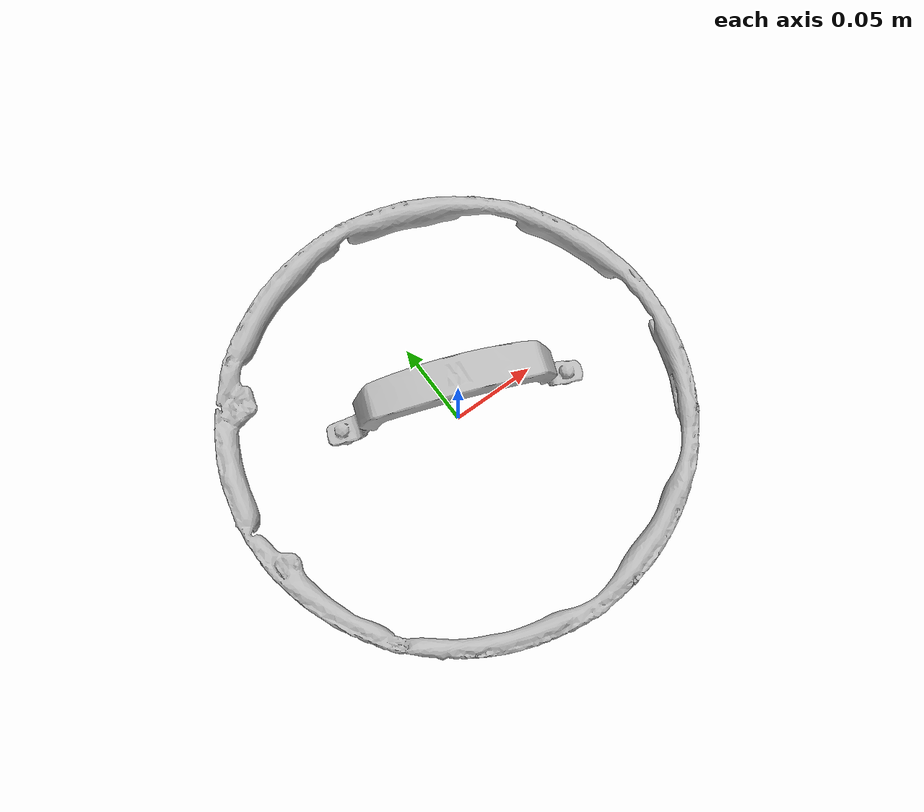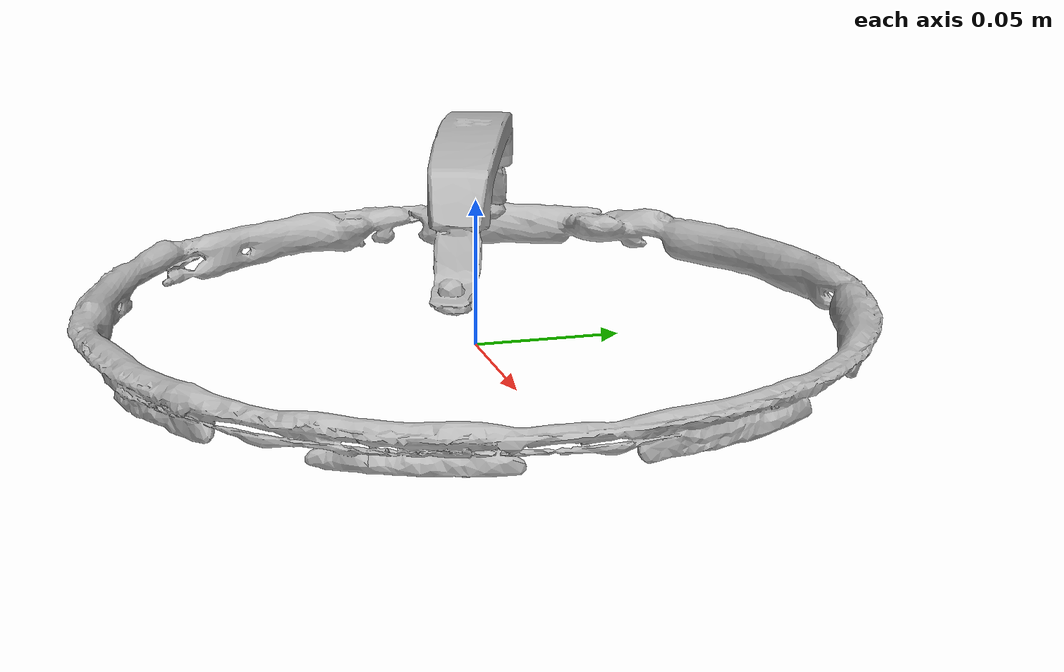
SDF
<?xml version="1.0" ?>
<sdf version='1.8'>
  <model name='ycb_028_skillet_lid'>
    <link name='body'>
      <inertial>
        <mass>0.652</mass>
        <pose>-0.00488210248 0.00407665156 0.024787897 0 0 0</pose>
        <inertia>
          <ixx>0.00439016291787</ixx>
          <ixy>0.000240987324131</ixy>
          <ixz>-2.36591909086e-06</ixz>
          <iyy>0.00422226874237</iyy>
          <iyz>3.2029859135e-05</iyz>
          <izz>0.00785571811851</izz>
        </inertia>
      </inertial>
      <visual name='ycb_028_skillet_lid_visual'>
        <pose>-0.009497 -0.024243 0.004689 0 0 0</pose>
        <geometry>
          <mesh>
            <uri>model://ycb_028_skillet_lid/meshes/textured.dae</uri>
          </mesh>
        </geometry>
      </visual>
      <collision name='ycb_028_skillet_lid_collision'>
        <pose>-0.009497 -0.024243 0.004689 0 0 0</pose>
        <geometry>
          <mesh>
            <uri>model://ycb_028_skillet_lid/meshes/nontextured.stl</uri>
          </mesh>
        </geometry>
        <max_contacts>10</max_contacts>
        <surface>
          <contact>
            <ode>
              <kp>1e15</kp>
              <kd>1e13</kd>
            </ode>
          </contact>
        </surface>
      </collision>
    </link>
  </model>
</sdf>
